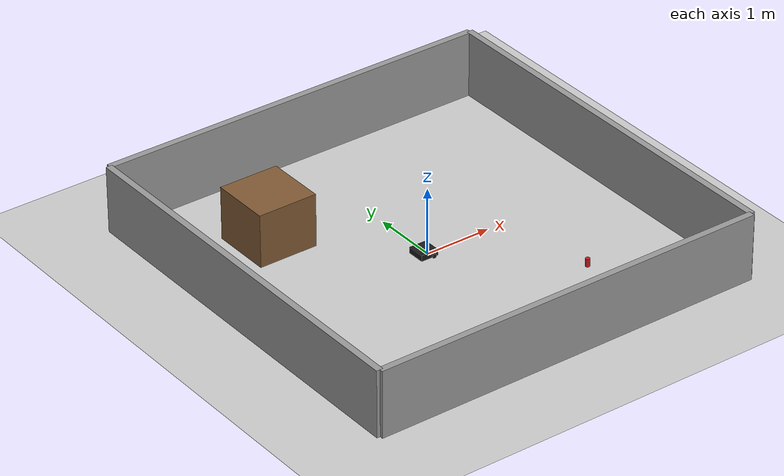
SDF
<?xml version="1.0" ?>
<sdf version="1.8">
  <world name="apex_world">

    <!-- Gazebo Harmonic system plugins -->
    <plugin filename="gz-sim-physics-system"
            name="gz::sim::systems::Physics"/>
    <plugin filename="gz-sim-user-commands-system"
            name="gz::sim::systems::UserCommands"/>
    <plugin filename="gz-sim-scene-broadcaster-system"
            name="gz::sim::systems::SceneBroadcaster"/>
    <plugin filename="gz-sim-sensors-system"
            name="gz::sim::systems::Sensors">
      <render_engine>ogre2</render_engine>
    </plugin>
    <plugin filename="gz-sim-imu-system"
            name="gz::sim::systems::Imu"/>
    <plugin filename="gz-sim-contact-system"
            name="gz::sim::systems::Contact"/>

    <!-- 조명 -->
    <light name="sun" type="directional">
      <cast_shadows>true</cast_shadows>
      <pose>0 0 10 0 0 0</pose>
      <diffuse>0.8 0.8 0.8 1</diffuse>
      <specular>0.2 0.2 0.2 1</specular>
      <direction>-0.5 0.1 -0.9</direction>
      <attenuation>
        <range>1000</range>
        <constant>0.9</constant>
        <linear>0.01</linear>
        <quadratic>0.001</quadratic>
      </attenuation>
    </light>

    <!-- 바닥 (마찰 높임 — 바퀴 그립 확보) -->
    <model name="ground_plane">
      <static>true</static>
      <link name="link">
        <collision name="col">
          <geometry><plane><normal>0 0 1</normal><size>100 100</size></plane></geometry>
          <surface><friction><ode><mu>5.0</mu><mu2>5.0</mu2></ode></friction></surface>
        </collision>
        <visual name="vis">
          <geometry><plane><normal>0 0 1</normal><size>100 100</size></plane></geometry>
          <material><ambient>0.8 0.8 0.8 1</ambient><diffuse>0.8 0.8 0.8 1</diffuse></material>
        </visual>
      </link>
    </model>

    <!-- 물리 설정 -->
    <physics type="ode">
      <real_time_update_rate>250.0</real_time_update_rate>
      <max_step_size>0.004</max_step_size>
      <real_time_factor>1</real_time_factor>
    </physics>

    <!-- ── 외벽 (6×6m 방) ──────────────────────────────── -->
    <model name="wall_north">
      <static>true</static>
      <pose>0 3 0.5 0 0 0</pose>
      <link name="link">
        <collision name="col"><geometry><box><size>6 0.1 1</size></box></geometry></collision>
        <visual name="vis"><geometry><box><size>6 0.1 1</size></box></geometry>
          <material><ambient>0.6 0.6 0.6 1</ambient></material></visual>
      </link>
    </model>

    <model name="wall_south">
      <static>true</static>
      <pose>0 -3 0.5 0 0 0</pose>
      <link name="link">
        <collision name="col"><geometry><box><size>6 0.1 1</size></box></geometry></collision>
        <visual name="vis"><geometry><box><size>6 0.1 1</size></box></geometry>
          <material><ambient>0.6 0.6 0.6 1</ambient></material></visual>
      </link>
    </model>

    <model name="wall_east">
      <static>true</static>
      <pose>3 0 0.5 0 0 1.5708</pose>
      <link name="link">
        <collision name="col"><geometry><box><size>6 0.1 1</size></box></geometry></collision>
        <visual name="vis"><geometry><box><size>6 0.1 1</size></box></geometry>
          <material><ambient>0.6 0.6 0.6 1</ambient></material></visual>
      </link>
    </model>

    <model name="wall_west">
      <static>true</static>
      <pose>-3 0 0.5 0 0 1.5708</pose>
      <link name="link">
        <collision name="col"><geometry><box><size>6 0.1 1</size></box></geometry></collision>
        <visual name="vis"><geometry><box><size>6 0.1 1</size></box></geometry>
          <material><ambient>0.6 0.6 0.6 1</ambient></material></visual>
      </link>
    </model>

    <!-- ── APPROACH 탐지 목표: coke_can (빨간 원기둥) ──
         YOLO "bottle" 클래스로 탐지
    ─────────────────────────────────────────────────── -->
    <model name="coke_can_1">
      <static>true</static>
      <pose>1.5 -1.5 0.06 0 0 0</pose>
      <link name="link">
        <collision name="col"><geometry><cylinder><radius>0.033</radius><length>0.12</length></cylinder></geometry></collision>
        <visual name="vis"><geometry><cylinder><radius>0.033</radius><length>0.12</length></cylinder></geometry>
          <material><ambient>0.8 0.1 0.1 1</ambient><diffuse>0.8 0.1 0.1 1</diffuse></material></visual>
      </link>
    </model>

    <!-- ── AVOID 목표: cafe_table (갈색 박스) ────────────
         YOLO "dining table" 클래스로 탐지 시 장애물 주입
    ─────────────────────────────────────────────────── -->
    <model name="cafe_table_1">
      <static>true</static>
      <pose>-1.5 1.5 0.4 0 0 0</pose>
      <link name="link">
        <collision name="col"><geometry><box><size>0.9 0.9 0.8</size></box></geometry></collision>
        <visual name="vis"><geometry><box><size>0.9 0.9 0.8</size></box></geometry>
          <material><ambient>0.5 0.35 0.2 1</ambient><diffuse>0.5 0.35 0.2 1</diffuse></material></visual>
      </link>
    </model>

    <!-- ── TurtleBot3 Waffle Pi (Gazebo Harmonic 네이티브 플러그인) ── -->
    <model name="turtlebot3_waffle_pi">
      <pose>0 0 0.01 0 0 0</pose>

      <!-- base_footprint: 모델 원점 -->
      <link name="base_footprint"/>

      <!-- base_joint: base_footprint → base_link (+10mm) -->
      <joint name="base_joint" type="fixed">
        <parent>base_footprint</parent>
        <child>base_link</child>
        <pose>0 0 0.010 0 0 0</pose>
      </joint>

      <!-- base_link: 차체 -->
      <link name="base_link">
        <pose>0 0 0.010 0 0 0</pose>
        <inertial>
          <mass>1.3729096</mass>
          <inertia>
            <ixx>8.7002718e-03</ixx><ixy>-4.7576583e-05</ixy><ixz>1.1160499e-04</ixz>
            <iyy>8.6195418e-03</iyy><iyz>-3.5422299e-06</iyz><izz>1.3938951e-02</izz>
          </inertia>
        </inertial>
        <collision name="col">
          <pose>-0.064 0 0.048 0 0 0</pose>
          <geometry><box><size>0.266 0.266 0.089</size></box></geometry>
        </collision>
        <visual name="vis">
          <pose>-0.064 0 0.048 0 0 0</pose>
          <geometry><box><size>0.266 0.266 0.089</size></box></geometry>
          <material><ambient>0.1 0.1 0.1 1</ambient><diffuse>0.1 0.1 0.1 1</diffuse></material>
        </visual>
      </link>

      <!-- 왼쪽 바퀴 -->
      <joint name="wheel_left_joint" type="revolute">
        <parent>base_link</parent>
        <child>wheel_left_link</child>
        <axis>
          <xyz>0 1 0</xyz>
          <limit><lower>-1.79769e+308</lower><upper>1.79769e+308</upper></limit>
          <dynamics><damping>0.001</damping><friction>0.001</friction></dynamics>
        </axis>
      </joint>
      <link name="wheel_left_link">
        <pose>0 0.144 0.033 -1.5707963 0 0</pose>
        <inertial>
          <mass>0.1</mass>
          <inertia><ixx>3.17e-05</ixx><ixy>0</ixy><ixz>0</ixz><iyy>3.17e-05</iyy><iyz>0</iyz><izz>5.145e-05</izz></inertia>
        </inertial>
        <collision name="col">
          <geometry><cylinder><radius>0.033</radius><length>0.018</length></cylinder></geometry>
          <surface>
            <friction><ode><mu>5.0</mu><mu2>5.0</mu2></ode></friction>
            <contact><ode><kp>1e5</kp><kd>100</kd><max_vel>0.1</max_vel><min_depth>0.001</min_depth></ode></contact>
          </surface>
        </collision>
        <visual name="vis">
          <geometry><cylinder><radius>0.033</radius><length>0.018</length></cylinder></geometry>
          <material><ambient>0.1 0.1 0.1 1</ambient></material>
        </visual>
      </link>

      <!-- 오른쪽 바퀴 -->
      <joint name="wheel_right_joint" type="revolute">
        <parent>base_link</parent>
        <child>wheel_right_link</child>
        <axis>
          <xyz>0 1 0</xyz>
          <limit><lower>-1.79769e+308</lower><upper>1.79769e+308</upper></limit>
          <dynamics><damping>0.001</damping><friction>0.001</friction></dynamics>
        </axis>
      </joint>
      <link name="wheel_right_link">
        <pose>0 -0.144 0.033 -1.5707963 0 0</pose>
        <inertial>
          <mass>0.1</mass>
          <inertia><ixx>3.17e-05</ixx><ixy>0</ixy><ixz>0</ixz><iyy>3.17e-05</iyy><iyz>0</iyz><izz>5.145e-05</izz></inertia>
        </inertial>
        <collision name="col">
          <geometry><cylinder><radius>0.033</radius><length>0.018</length></cylinder></geometry>
          <surface>
            <friction><ode><mu>5.0</mu><mu2>5.0</mu2></ode></friction>
            <contact><ode><kp>1e5</kp><kd>100</kd><max_vel>0.1</max_vel><min_depth>0.001</min_depth></ode></contact>
          </surface>
        </collision>
        <visual name="vis">
          <geometry><cylinder><radius>0.033</radius><length>0.018</length></cylinder></geometry>
          <material><ambient>0.1 0.1 0.1 1</ambient></material>
        </visual>
      </link>

      <!-- 앞 캐스터 -->
      <joint name="caster_front_joint" type="fixed">
        <parent>base_link</parent>
        <child>caster_front_link</child>
      </joint>
      <link name="caster_front_link">
        <pose>0.073 0 0.005 0 0 0</pose>
        <inertial><mass>0.01</mass><inertia><ixx>1e-06</ixx><ixy>0</ixy><ixz>0</ixz><iyy>1e-06</iyy><iyz>0</iyz><izz>1e-06</izz></inertia></inertial>
        <collision name="col"><geometry><sphere><radius>0.005</radius></sphere></geometry><surface><friction><ode><mu>0</mu><mu2>0</mu2></ode></friction></surface></collision>
        <visual name="vis"><geometry><sphere><radius>0.005</radius></sphere></geometry><material><ambient>0.8 0.8 0.8 1</ambient></material></visual>
      </link>

      <!-- 뒤 캐스터 -->
      <joint name="caster_back_joint" type="fixed">
        <parent>base_link</parent>
        <child>caster_back_link</child>
      </joint>
      <link name="caster_back_link">
        <pose>-0.177 0 0.005 0 0 0</pose>
        <inertial><mass>0.01</mass><inertia><ixx>1e-06</ixx><ixy>0</ixy><ixz>0</ixz><iyy>1e-06</iyy><iyz>0</iyz><izz>1e-06</izz></inertia></inertial>
        <collision name="col"><geometry><sphere><radius>0.005</radius></sphere></geometry><surface><friction><ode><mu>0</mu><mu2>0</mu2></ode></friction></surface></collision>
        <visual name="vis"><geometry><sphere><radius>0.005</radius></sphere></geometry><material><ambient>0.8 0.8 0.8 1</ambient></material></visual>
      </link>

      <!-- LiDAR -->
      <joint name="scan_joint" type="fixed">
        <parent>base_link</parent>
        <child>base_scan</child>
      </joint>
      <link name="base_scan">
        <pose>-0.064 0 0.131 0 0 0</pose>
        <sensor name="lidar" type="gpu_lidar">
          <topic>/scan</topic>
          <gz_frame_id>base_scan</gz_frame_id>
          <update_rate>5</update_rate>
          <lidar>
            <scan>
              <horizontal>
                <samples>360</samples>
                <resolution>1</resolution>
                <min_angle>0</min_angle>
                <max_angle>6.28318530718</max_angle>
              </horizontal>
            </scan>
            <range><min>0.120</min><max>3.5</max><resolution>0.015</resolution></range>
            <noise><type>gaussian</type><mean>0</mean><stddev>0.01</stddev></noise>
          </lidar>
          <always_on>true</always_on>
          <visualize>false</visualize>
        </sensor>
      </link>

      <!-- 카메라 -->
      <joint name="camera_joint" type="fixed">
        <parent>base_link</parent>
        <child>camera_rgb_frame</child>
      </joint>
      <link name="camera_rgb_frame">
        <pose>0.073 -0.011 0.094 0 0 0</pose>
        <sensor name="camera" type="camera">
          <topic>/camera/image_raw</topic>
          <gz_frame_id>camera_rgb_optical_frame</gz_frame_id>
          <update_rate>10</update_rate>
          <camera>
            <horizontal_fov>1.3962634015954636</horizontal_fov>
            <image><width>640</width><height>480</height><format>RGB_INT8</format></image>
            <clip><near>0.1</near><far>100</far></clip>
            <noise><type>gaussian</type><mean>0</mean><stddev>0.007</stddev></noise>
          </camera>
          <always_on>true</always_on>
          <visualize>false</visualize>
        </sensor>
      </link>

      <!-- IMU -->
      <joint name="imu_joint" type="fixed">
        <parent>base_link</parent>
        <child>imu_link</child>
      </joint>
      <link name="imu_link">
        <pose>0 0 0.078 0 0 0</pose>
        <sensor name="imu" type="imu">
          <topic>/imu</topic>
          <update_rate>200</update_rate>
          <always_on>true</always_on>
        </sensor>
      </link>

      <!-- Gazebo Harmonic: DiffDrive (odom + TF 자동 publish) -->
      <plugin filename="gz-sim8-diff-drive-system" name="gz::sim::systems::DiffDrive">
        <left_joint>wheel_left_joint</left_joint>
        <right_joint>wheel_right_joint</right_joint>
        <wheel_separation>0.287</wheel_separation>
        <wheel_radius>0.033</wheel_radius>
        <odom_publish_frequency>30</odom_publish_frequency>
        <topic>/cmd_vel</topic>
        <odom_topic>/odom</odom_topic>
        <tf_topic>/tf</tf_topic>
        <frame_id>odom</frame_id>
        <child_frame_id>base_footprint</child_frame_id>
        <publish_odom>true</publish_odom>
        <publish_odom_tf>true</publish_odom_tf>
      </plugin>

      <!-- Gazebo Harmonic: 바퀴 조인트 상태 publish -->
      <plugin filename="gz-sim8-joint-state-publisher-system" name="gz::sim::systems::JointStatePublisher">
        <topic>/joint_states</topic>
        <joint_name>wheel_left_joint</joint_name>
        <joint_name>wheel_right_joint</joint_name>
      </plugin>
    </model>

  </world>
</sdf>
